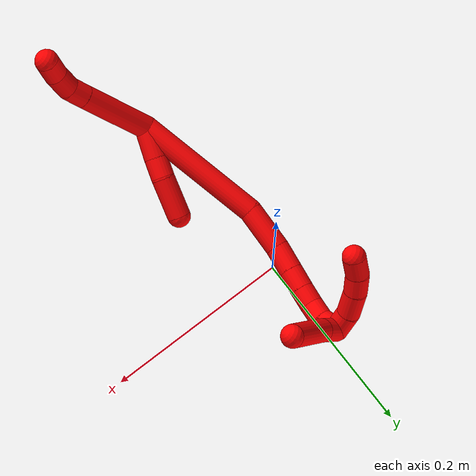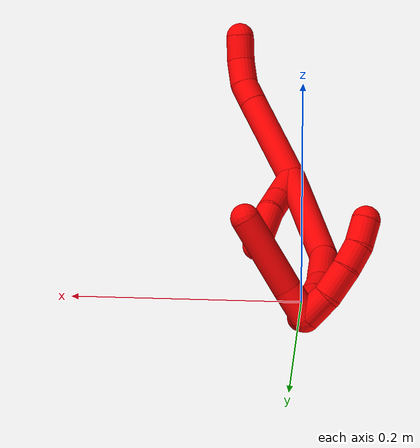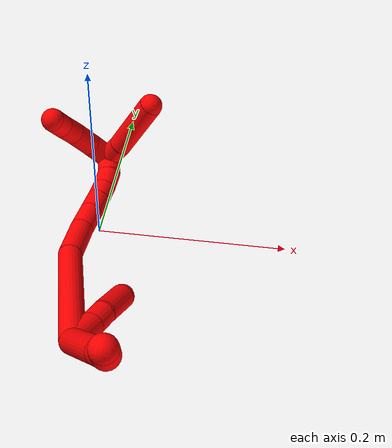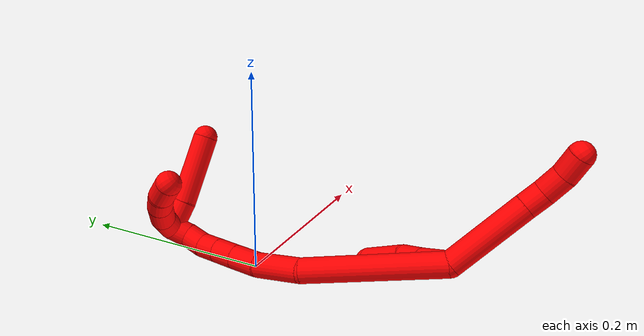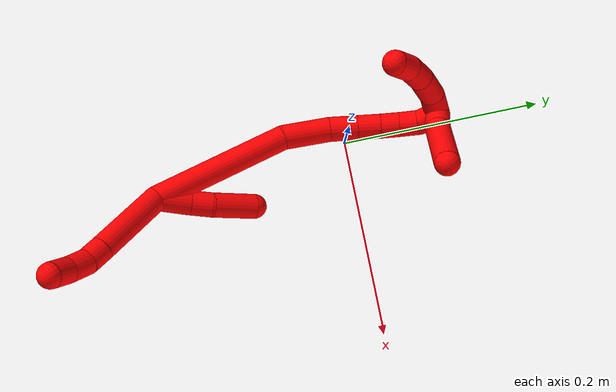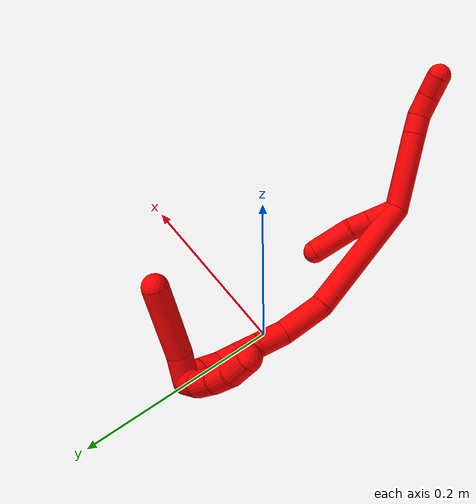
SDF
<sdf version="1.7">
 <world name="default">
  <model name="2">
   <static>0</static>
   <link name="2">
    <collision name="collision-cylinder-e_1_2_8">
     <pose>0.001949 0.00457 0.041323 -0.110154 0.046841 -0.002583</pose>
     <geometry><cylinder><radius>0.0125</radius><length>0.083242</length></cylinder></geometry>
     <surface>
      <friction><ode><mu>1.16</mu><mu2>1.16</mu2><slip1>0</slip1><slip2>0</slip2></ode></friction>
      <contact><ode><kp>1e+06</kp><kd>1</kd><max_vel>0</max_vel><min_depth>0.001</min_depth></ode></contact>
     </surface>
    </collision>
    <visual name="visual-cylinder-e_1_2_8">
     <pose>0.001949 0.00457 0.041323 -0.110154 0.046841 -0.002583</pose>
     <geometry><cylinder><radius>0.0125</radius><length>0.083242</length></cylinder></geometry>
     <material><ambient>1 0 0 1</ambient></material>
    </visual>
    <collision name="collision-cylinder-e_2_8_9">
     <pose>0.004342 0.010022 0.092764 -0.086893 0.043717 -0.001901</pose>
     <geometry><cylinder><radius>0.0125</radius><length>0.020331</length></cylinder></geometry>
     <surface>
      <friction><ode><mu>1.16</mu><mu2>1.16</mu2><slip1>0</slip1><slip2>0</slip2></ode></friction>
      <contact><ode><kp>1e+06</kp><kd>1</kd><max_vel>0</max_vel><min_depth>0.001</min_depth></ode></contact>
     </surface>
    </collision>
    <visual name="visual-cylinder-e_2_8_9">
     <pose>0.004342 0.010022 0.092764 -0.086893 0.043717 -0.001901</pose>
     <geometry><cylinder><radius>0.0125</radius><length>0.020331</length></cylinder></geometry>
     <material><ambient>1 0 0 1</ambient></material>
    </visual>
    <collision name="collision-cylinder-e_3_9_10">
     <pose>0.001828 0.011191 0.114245 -0.025297 -0.254576 0.003238</pose>
     <geometry><cylinder><radius>0.0125</radius><length>0.023492</length></cylinder></geometry>
     <surface>
      <friction><ode><mu>1.16</mu><mu2>1.16</mu2><slip1>0</slip1><slip2>0</slip2></ode></friction>
      <contact><ode><kp>1e+06</kp><kd>1</kd><max_vel>0</max_vel><min_depth>0.001</min_depth></ode></contact>
     </surface>
    </collision>
    <visual name="visual-cylinder-e_3_9_10">
     <pose>0.001828 0.011191 0.114245 -0.025297 -0.254576 0.003238</pose>
     <geometry><cylinder><radius>0.0125</radius><length>0.023492</length></cylinder></geometry>
     <material><ambient>1 0 0 1</ambient></material>
    </visual>
    <collision name="collision-cylinder-e_4_10_6">
     <pose>-0.006117 0.012901 0.135836 -0.138166 -0.449935 0.031666</pose>
     <geometry><cylinder><radius>0.0125</radius><length>0.022936</length></cylinder></geometry>
     <surface>
      <friction><ode><mu>1.16</mu><mu2>1.16</mu2><slip1>0</slip1><slip2>0</slip2></ode></friction>
      <contact><ode><kp>1e+06</kp><kd>1</kd><max_vel>0</max_vel><min_depth>0.001</min_depth></ode></contact>
     </surface>
    </collision>
    <visual name="visual-cylinder-e_4_10_6">
     <pose>-0.006117 0.012901 0.135836 -0.138166 -0.449935 0.031666</pose>
     <geometry><cylinder><radius>0.0125</radius><length>0.022936</length></cylinder></geometry>
     <material><ambient>1 0 0 1</ambient></material>
    </visual>
    <collision name="collision-cylinder-e_1_2_11">
     <pose>0.00501 0.011259 -0.011578 -2.3702 0.300787 -0.714406</pose>
     <geometry><cylinder><radius>0.0125</radius><length>0.033818</length></cylinder></geometry>
     <surface>
      <friction><ode><mu>1.16</mu><mu2>1.16</mu2><slip1>0</slip1><slip2>0</slip2></ode></friction>
      <contact><ode><kp>1e+06</kp><kd>1</kd><max_vel>0</max_vel><min_depth>0.001</min_depth></ode></contact>
     </surface>
    </collision>
    <visual name="visual-cylinder-e_1_2_11">
     <pose>0.00501 0.011259 -0.011578 -2.3702 0.300787 -0.714406</pose>
     <geometry><cylinder><radius>0.0125</radius><length>0.033818</length></cylinder></geometry>
     <material><ambient>1 0 0 1</ambient></material>
    </visual>
    <collision name="collision-cylinder-e_2_11_12">
     <pose>0.012509 0.030159 -0.030485 -2.3352 0.230915 -0.530921</pose>
     <geometry><cylinder><radius>0.0125</radius><length>0.021753</length></cylinder></geometry>
     <surface>
      <friction><ode><mu>1.16</mu><mu2>1.16</mu2><slip1>0</slip1><slip2>0</slip2></ode></friction>
      <contact><ode><kp>1e+06</kp><kd>1</kd><max_vel>0</max_vel><min_depth>0.001</min_depth></ode></contact>
     </surface>
    </collision>
    <visual name="visual-cylinder-e_2_11_12">
     <pose>0.012509 0.030159 -0.030485 -2.3352 0.230915 -0.530921</pose>
     <geometry><cylinder><radius>0.0125</radius><length>0.021753</length></cylinder></geometry>
     <material><ambient>1 0 0 1</ambient></material>
    </visual>
    <collision name="collision-cylinder-e_3_12_5">
     <pose>0.021458 0.049799 -0.055357 -2.54183 0.295058 -0.896032</pose>
     <geometry><cylinder><radius>0.0125</radius><length>0.044429</length></cylinder></geometry>
     <surface>
      <friction><ode><mu>1.16</mu><mu2>1.16</mu2><slip1>0</slip1><slip2>0</slip2></ode></friction>
      <contact><ode><kp>1e+06</kp><kd>1</kd><max_vel>0</max_vel><min_depth>0.001</min_depth></ode></contact>
     </surface>
    </collision>
    <visual name="visual-cylinder-e_3_12_5">
     <pose>0.021458 0.049799 -0.055357 -2.54183 0.295058 -0.896032</pose>
     <geometry><cylinder><radius>0.0125</radius><length>0.044429</length></cylinder></geometry>
     <material><ambient>1 0 0 1</ambient></material>
    </visual>
    <collision name="collision-cylinder-e_1_2_13">
     <pose>-0.015193 0.031755 -0.060604 -2.65895 -0.218506 0.838512</pose>
     <geometry><cylinder><radius>0.0125</radius><length>0.140172</length></cylinder></geometry>
     <surface>
      <friction><ode><mu>1.16</mu><mu2>1.16</mu2><slip1>0</slip1><slip2>0</slip2></ode></friction>
      <contact><ode><kp>1e+06</kp><kd>1</kd><max_vel>0</max_vel><min_depth>0.001</min_depth></ode></contact>
     </surface>
    </collision>
    <visual name="visual-cylinder-e_1_2_13">
     <pose>-0.015193 0.031755 -0.060604 -2.65895 -0.218506 0.838512</pose>
     <geometry><cylinder><radius>0.0125</radius><length>0.140172</length></cylinder></geometry>
     <material><ambient>1 0 0 1</ambient></material>
    </visual>
    <collision name="collision-cylinder-e_2_13_14">
     <pose>-0.031238 0.078821 -0.139664 -2.44904 -0.035546 0.098447</pose>
     <geometry><cylinder><radius>0.0125</radius><length>0.047991</length></cylinder></geometry>
     <surface>
      <friction><ode><mu>1.16</mu><mu2>1.16</mu2><slip1>0</slip1><slip2>0</slip2></ode></friction>
      <contact><ode><kp>1e+06</kp><kd>1</kd><max_vel>0</max_vel><min_depth>0.001</min_depth></ode></contact>
     </surface>
    </collision>
    <visual name="visual-cylinder-e_2_13_14">
     <pose>-0.031238 0.078821 -0.139664 -2.44904 -0.035546 0.098447</pose>
     <geometry><cylinder><radius>0.0125</radius><length>0.047991</length></cylinder></geometry>
     <material><ambient>1 0 0 1</ambient></material>
    </visual>
    <collision name="collision-cylinder-e_3_14_15">
     <pose>-0.032435 0.105017 -0.16737 -2.27524 -0.024056 0.052007</pose>
     <geometry><cylinder><radius>0.0125</radius><length>0.028576</length></cylinder></geometry>
     <surface>
      <friction><ode><mu>1.16</mu><mu2>1.16</mu2><slip1>0</slip1><slip2>0</slip2></ode></friction>
      <contact><ode><kp>1e+06</kp><kd>1</kd><max_vel>0</max_vel><min_depth>0.001</min_depth></ode></contact>
     </surface>
    </collision>
    <visual name="visual-cylinder-e_3_14_15">
     <pose>-0.032435 0.105017 -0.16737 -2.27524 -0.024056 0.052007</pose>
     <geometry><cylinder><radius>0.0125</radius><length>0.028576</length></cylinder></geometry>
     <material><ambient>1 0 0 1</ambient></material>
    </visual>
    <collision name="collision-cylinder-e_4_15_16">
     <pose>-0.033109 0.124748 -0.183994 -2.26562 -0.028708 0.061285</pose>
     <geometry><cylinder><radius>0.0125</radius><length>0.023042</length></cylinder></geometry>
     <surface>
      <friction><ode><mu>1.16</mu><mu2>1.16</mu2><slip1>0</slip1><slip2>0</slip2></ode></friction>
      <contact><ode><kp>1e+06</kp><kd>1</kd><max_vel>0</max_vel><min_depth>0.001</min_depth></ode></contact>
     </surface>
    </collision>
    <visual name="visual-cylinder-e_4_15_16">
     <pose>-0.033109 0.124748 -0.183994 -2.26562 -0.028708 0.061285</pose>
     <geometry><cylinder><radius>0.0125</radius><length>0.023042</length></cylinder></geometry>
     <material><ambient>1 0 0 1</ambient></material>
    </visual>
    <collision name="collision-cylinder-e_5_16_17">
     <pose>-0.03397 0.141262 -0.197846 -2.27236 -0.052809 0.113662</pose>
     <geometry><cylinder><radius>0.0125</radius><length>0.020105</length></cylinder></geometry>
     <surface>
      <friction><ode><mu>1.16</mu><mu2>1.16</mu2><slip1>0</slip1><slip2>0</slip2></ode></friction>
      <contact><ode><kp>1e+06</kp><kd>1</kd><max_vel>0</max_vel><min_depth>0.001</min_depth></ode></contact>
     </surface>
    </collision>
    <visual name="visual-cylinder-e_5_16_17">
     <pose>-0.03397 0.141262 -0.197846 -2.27236 -0.052809 0.113662</pose>
     <geometry><cylinder><radius>0.0125</radius><length>0.020105</length></cylinder></geometry>
     <material><ambient>1 0 0 1</ambient></material>
    </visual>
    <collision name="collision-cylinder-e_6_17_18">
     <pose>-0.036681 0.157593 -0.208926 -2.05899 -0.218646 0.36116</pose>
     <geometry><cylinder><radius>0.0125</radius><length>0.020098</length></cylinder></geometry>
     <surface>
      <friction><ode><mu>1.16</mu><mu2>1.16</mu2><slip1>0</slip1><slip2>0</slip2></ode></friction>
      <contact><ode><kp>1e+06</kp><kd>1</kd><max_vel>0</max_vel><min_depth>0.001</min_depth></ode></contact>
     </surface>
    </collision>
    <visual name="visual-cylinder-e_6_17_18">
     <pose>-0.036681 0.157593 -0.208926 -2.05899 -0.218646 0.36116</pose>
     <geometry><cylinder><radius>0.0125</radius><length>0.020098</length></cylinder></geometry>
     <material><ambient>1 0 0 1</ambient></material>
    </visual>
    <collision name="collision-cylinder-e_7_18_1">
     <pose>-0.043947 0.173253 -0.218562 -2.19466 -0.533146 0.979388</pose>
     <geometry><cylinder><radius>0.0125</radius><length>0.020015</length></cylinder></geometry>
     <surface>
      <friction><ode><mu>1.16</mu><mu2>1.16</mu2><slip1>0</slip1><slip2>0</slip2></ode></friction>
      <contact><ode><kp>1e+06</kp><kd>1</kd><max_vel>0</max_vel><min_depth>0.001</min_depth></ode></contact>
     </surface>
    </collision>
    <visual name="visual-cylinder-e_7_18_1">
     <pose>-0.043947 0.173253 -0.218562 -2.19466 -0.533146 0.979388</pose>
     <geometry><cylinder><radius>0.0125</radius><length>0.020015</length></cylinder></geometry>
     <material><ambient>1 0 0 1</ambient></material>
    </visual>
    <collision name="collision-cylinder-e_1_1_19">
     <pose>-0.049983 0.188323 -0.211427 -0.585823 -0.064975 0.019602</pose>
     <geometry><cylinder><radius>0.0125</radius><length>0.029273</length></cylinder></geometry>
     <surface>
      <friction><ode><mu>1.16</mu><mu2>1.16</mu2><slip1>0</slip1><slip2>0</slip2></ode></friction>
      <contact><ode><kp>1e+06</kp><kd>1</kd><max_vel>0</max_vel><min_depth>0.001</min_depth></ode></contact>
     </surface>
    </collision>
    <visual name="visual-cylinder-e_1_1_19">
     <pose>-0.049983 0.188323 -0.211427 -0.585823 -0.064975 0.019602</pose>
     <geometry><cylinder><radius>0.0125</radius><length>0.029273</length></cylinder></geometry>
     <material><ambient>1 0 0 1</ambient></material>
    </visual>
    <collision name="collision-cylinder-e_2_19_4">
     <pose>-0.055467 0.218613 -0.172117 -0.685941 -0.128537 0.045953</pose>
     <geometry><cylinder><radius>0.0125</radius><length>0.070727</length></cylinder></geometry>
     <surface>
      <friction><ode><mu>1.16</mu><mu2>1.16</mu2><slip1>0</slip1><slip2>0</slip2></ode></friction>
      <contact><ode><kp>1e+06</kp><kd>1</kd><max_vel>0</max_vel><min_depth>0.001</min_depth></ode></contact>
     </surface>
    </collision>
    <visual name="visual-cylinder-e_2_19_4">
     <pose>-0.055467 0.218613 -0.172117 -0.685941 -0.128537 0.045953</pose>
     <geometry><cylinder><radius>0.0125</radius><length>0.070727</length></cylinder></geometry>
     <material><ambient>1 0 0 1</ambient></material>
    </visual>
    <collision name="collision-cylinder-e_1_1_20">
     <pose>-0.061473 0.178854 -0.219821 0.353494 -1.2579 -0.258433</pose>
     <geometry><cylinder><radius>0.0125</radius><length>0.02615</length></cylinder></geometry>
     <surface>
      <friction><ode><mu>1.16</mu><mu2>1.16</mu2><slip1>0</slip1><slip2>0</slip2></ode></friction>
      <contact><ode><kp>1e+06</kp><kd>1</kd><max_vel>0</max_vel><min_depth>0.001</min_depth></ode></contact>
     </surface>
    </collision>
    <visual name="visual-cylinder-e_1_1_20">
     <pose>-0.061473 0.178854 -0.219821 0.353494 -1.2579 -0.258433</pose>
     <geometry><cylinder><radius>0.0125</radius><length>0.02615</length></cylinder></geometry>
     <material><ambient>1 0 0 1</ambient></material>
    </visual>
    <collision name="collision-cylinder-e_2_20_21">
     <pose>-0.085975 0.17526 -0.208776 0.294059 -1.00884 -0.163154</pose>
     <geometry><cylinder><radius>0.0125</radius><length>0.028509</length></cylinder></geometry>
     <surface>
      <friction><ode><mu>1.16</mu><mu2>1.16</mu2><slip1>0</slip1><slip2>0</slip2></ode></friction>
      <contact><ode><kp>1e+06</kp><kd>1</kd><max_vel>0</max_vel><min_depth>0.001</min_depth></ode></contact>
     </surface>
    </collision>
    <visual name="visual-cylinder-e_2_20_21">
     <pose>-0.085975 0.17526 -0.208776 0.294059 -1.00884 -0.163154</pose>
     <geometry><cylinder><radius>0.0125</radius><length>0.028509</length></cylinder></geometry>
     <material><ambient>1 0 0 1</ambient></material>
    </visual>
    <collision name="collision-cylinder-e_3_21_22">
     <pose>-0.106357 0.170774 -0.194522 0.316107 -0.847264 -0.143496</pose>
     <geometry><cylinder><radius>0.0125</radius><length>0.0222</length></cylinder></geometry>
     <surface>
      <friction><ode><mu>1.16</mu><mu2>1.16</mu2><slip1>0</slip1><slip2>0</slip2></ode></friction>
      <contact><ode><kp>1e+06</kp><kd>1</kd><max_vel>0</max_vel><min_depth>0.001</min_depth></ode></contact>
     </surface>
    </collision>
    <visual name="visual-cylinder-e_3_21_22">
     <pose>-0.106357 0.170774 -0.194522 0.316107 -0.847264 -0.143496</pose>
     <geometry><cylinder><radius>0.0125</radius><length>0.0222</length></cylinder></geometry>
     <material><ambient>1 0 0 1</ambient></material>
    </visual>
    <collision name="collision-cylinder-e_4_22_3">
     <pose>-0.121273 0.166497 -0.178244 0.211134 -0.60677 -0.066317</pose>
     <geometry><cylinder><radius>0.0125</radius><length>0.023142</length></cylinder></geometry>
     <surface>
      <friction><ode><mu>1.16</mu><mu2>1.16</mu2><slip1>0</slip1><slip2>0</slip2></ode></friction>
      <contact><ode><kp>1e+06</kp><kd>1</kd><max_vel>0</max_vel><min_depth>0.001</min_depth></ode></contact>
     </surface>
    </collision>
    <visual name="visual-cylinder-e_4_22_3">
     <pose>-0.121273 0.166497 -0.178244 0.211134 -0.60677 -0.066317</pose>
     <geometry><cylinder><radius>0.0125</radius><length>0.023142</length></cylinder></geometry>
     <material><ambient>1 0 0 1</ambient></material>
    </visual>
    <collision name="collision-sphere-3">
     <pose>-0.127871 0.164505 -0.168949 0 -0 0</pose>
     <geometry><sphere><radius>0.0125</radius></sphere></geometry>
     <surface>
      <friction><ode><mu>1.16</mu><mu2>1.16</mu2><slip1>0</slip1><slip2>0</slip2></ode></friction>
      <contact><ode><kp>1e+06</kp><kd>1</kd><max_vel>0</max_vel><min_depth>0.001</min_depth></ode></contact>
     </surface>
    </collision>
    <visual name="visual-sphere-3">
     <pose>-0.127871 0.164505 -0.168949 0 -0 0</pose>
     <geometry><sphere><radius>0.0125</radius></sphere></geometry>
     <material><ambient>1 0 0 1</ambient></material>
    </visual>
    <collision name="collision-sphere-22">
     <pose>-0.114676 0.16849 -0.187538 0 -0 0</pose>
     <geometry><sphere><radius>0.0125</radius></sphere></geometry>
     <surface>
      <friction><ode><mu>1.16</mu><mu2>1.16</mu2><slip1>0</slip1><slip2>0</slip2></ode></friction>
      <contact><ode><kp>1e+06</kp><kd>1</kd><max_vel>0</max_vel><min_depth>0.001</min_depth></ode></contact>
     </surface>
    </collision>
    <visual name="visual-sphere-22">
     <pose>-0.114676 0.16849 -0.187538 0 -0 0</pose>
     <geometry><sphere><radius>0.0125</radius></sphere></geometry>
     <material><ambient>1 0 0 1</ambient></material>
    </visual>
    <collision name="collision-sphere-21">
     <pose>-0.098037 0.173058 -0.201507 0 -0 0</pose>
     <geometry><sphere><radius>0.0125</radius></sphere></geometry>
     <surface>
      <friction><ode><mu>1.16</mu><mu2>1.16</mu2><slip1>0</slip1><slip2>0</slip2></ode></friction>
      <contact><ode><kp>1e+06</kp><kd>1</kd><max_vel>0</max_vel><min_depth>0.001</min_depth></ode></contact>
     </surface>
    </collision>
    <visual name="visual-sphere-21">
     <pose>-0.098037 0.173058 -0.201507 0 -0 0</pose>
     <geometry><sphere><radius>0.0125</radius></sphere></geometry>
     <material><ambient>1 0 0 1</ambient></material>
    </visual>
    <collision name="collision-sphere-20">
     <pose>-0.073913 0.177461 -0.216045 0 -0 0</pose>
     <geometry><sphere><radius>0.0125</radius></sphere></geometry>
     <surface>
      <friction><ode><mu>1.16</mu><mu2>1.16</mu2><slip1>0</slip1><slip2>0</slip2></ode></friction>
      <contact><ode><kp>1e+06</kp><kd>1</kd><max_vel>0</max_vel><min_depth>0.001</min_depth></ode></contact>
     </surface>
    </collision>
    <visual name="visual-sphere-20">
     <pose>-0.073913 0.177461 -0.216045 0 -0 0</pose>
     <geometry><sphere><radius>0.0125</radius></sphere></geometry>
     <material><ambient>1 0 0 1</ambient></material>
    </visual>
    <collision name="collision-sphere-4">
     <pose>-0.06 0.240827 -0.144978 0 -0 0</pose>
     <geometry><sphere><radius>0.0125</radius></sphere></geometry>
     <surface>
      <friction><ode><mu>1.16</mu><mu2>1.16</mu2><slip1>0</slip1><slip2>0</slip2></ode></friction>
      <contact><ode><kp>1e+06</kp><kd>1</kd><max_vel>0</max_vel><min_depth>0.001</min_depth></ode></contact>
     </surface>
    </collision>
    <visual name="visual-sphere-4">
     <pose>-0.06 0.240827 -0.144978 0 -0 0</pose>
     <geometry><sphere><radius>0.0125</radius></sphere></geometry>
     <material><ambient>1 0 0 1</ambient></material>
    </visual>
    <collision name="collision-sphere-11">
     <pose>0.010019 0.022517 -0.023157 0 -0 0</pose>
     <geometry><sphere><radius>0.0125</radius></sphere></geometry>
     <surface>
      <friction><ode><mu>1.16</mu><mu2>1.16</mu2><slip1>0</slip1><slip2>0</slip2></ode></friction>
      <contact><ode><kp>1e+06</kp><kd>1</kd><max_vel>0</max_vel><min_depth>0.001</min_depth></ode></contact>
     </surface>
    </collision>
    <visual name="visual-sphere-11">
     <pose>0.010019 0.022517 -0.023157 0 -0 0</pose>
     <geometry><sphere><radius>0.0125</radius></sphere></geometry>
     <material><ambient>1 0 0 1</ambient></material>
    </visual>
    <collision name="collision-sphere-6">
     <pose>-0.011105 0.014323 0.146065 0 -0 0</pose>
     <geometry><sphere><radius>0.0125</radius></sphere></geometry>
     <surface>
      <friction><ode><mu>1.16</mu><mu2>1.16</mu2><slip1>0</slip1><slip2>0</slip2></ode></friction>
      <contact><ode><kp>1e+06</kp><kd>1</kd><max_vel>0</max_vel><min_depth>0.001</min_depth></ode></contact>
     </surface>
    </collision>
    <visual name="visual-sphere-6">
     <pose>-0.011105 0.014323 0.146065 0 -0 0</pose>
     <geometry><sphere><radius>0.0125</radius></sphere></geometry>
     <material><ambient>1 0 0 1</ambient></material>
    </visual>
    <collision name="collision-sphere-10">
     <pose>-0.00113 0.011479 0.125608 0 -0 0</pose>
     <geometry><sphere><radius>0.0125</radius></sphere></geometry>
     <surface>
      <friction><ode><mu>1.16</mu><mu2>1.16</mu2><slip1>0</slip1><slip2>0</slip2></ode></friction>
      <contact><ode><kp>1e+06</kp><kd>1</kd><max_vel>0</max_vel><min_depth>0.001</min_depth></ode></contact>
     </surface>
    </collision>
    <visual name="visual-sphere-10">
     <pose>-0.00113 0.011479 0.125608 0 -0 0</pose>
     <geometry><sphere><radius>0.0125</radius></sphere></geometry>
     <material><ambient>1 0 0 1</ambient></material>
    </visual>
    <collision name="collision-sphere-9">
     <pose>0.004786 0.010904 0.102881 0 -0 0</pose>
     <geometry><sphere><radius>0.0125</radius></sphere></geometry>
     <surface>
      <friction><ode><mu>1.16</mu><mu2>1.16</mu2><slip1>0</slip1><slip2>0</slip2></ode></friction>
      <contact><ode><kp>1e+06</kp><kd>1</kd><max_vel>0</max_vel><min_depth>0.001</min_depth></ode></contact>
     </surface>
    </collision>
    <visual name="visual-sphere-9">
     <pose>0.004786 0.010904 0.102881 0 -0 0</pose>
     <geometry><sphere><radius>0.0125</radius></sphere></geometry>
     <material><ambient>1 0 0 1</ambient></material>
    </visual>
    <collision name="collision-sphere-2">
     <geometry><sphere><radius>0.0125</radius></sphere></geometry>
     <surface>
      <friction><ode><mu>1.16</mu><mu2>1.16</mu2><slip1>0</slip1><slip2>0</slip2></ode></friction>
      <contact><ode><kp>1e+06</kp><kd>1</kd><max_vel>0</max_vel><min_depth>0.001</min_depth></ode></contact>
     </surface>
    </collision>
    <visual name="visual-sphere-2">
     <geometry><sphere><radius>0.0125</radius></sphere></geometry>
     <material><ambient>1 0 0 1</ambient></material>
    </visual>
    <collision name="collision-sphere-19">
     <pose>-0.050934 0.196398 -0.199257 0 -0 0</pose>
     <geometry><sphere><radius>0.0125</radius></sphere></geometry>
     <surface>
      <friction><ode><mu>1.16</mu><mu2>1.16</mu2><slip1>0</slip1><slip2>0</slip2></ode></friction>
      <contact><ode><kp>1e+06</kp><kd>1</kd><max_vel>0</max_vel><min_depth>0.001</min_depth></ode></contact>
     </surface>
    </collision>
    <visual name="visual-sphere-19">
     <pose>-0.050934 0.196398 -0.199257 0 -0 0</pose>
     <geometry><sphere><radius>0.0125</radius></sphere></geometry>
     <material><ambient>1 0 0 1</ambient></material>
    </visual>
    <collision name="collision-sphere-8">
     <pose>0.003898 0.009141 0.082647 0 -0 0</pose>
     <geometry><sphere><radius>0.0125</radius></sphere></geometry>
     <surface>
      <friction><ode><mu>1.16</mu><mu2>1.16</mu2><slip1>0</slip1><slip2>0</slip2></ode></friction>
      <contact><ode><kp>1e+06</kp><kd>1</kd><max_vel>0</max_vel><min_depth>0.001</min_depth></ode></contact>
     </surface>
    </collision>
    <visual name="visual-sphere-8">
     <pose>0.003898 0.009141 0.082647 0 -0 0</pose>
     <geometry><sphere><radius>0.0125</radius></sphere></geometry>
     <material><ambient>1 0 0 1</ambient></material>
    </visual>
    <collision name="collision-sphere-12">
     <pose>0.014998 0.037802 -0.037812 0 -0 0</pose>
     <geometry><sphere><radius>0.0125</radius></sphere></geometry>
     <surface>
      <friction><ode><mu>1.16</mu><mu2>1.16</mu2><slip1>0</slip1><slip2>0</slip2></ode></friction>
      <contact><ode><kp>1e+06</kp><kd>1</kd><max_vel>0</max_vel><min_depth>0.001</min_depth></ode></contact>
     </surface>
    </collision>
    <visual name="visual-sphere-12">
     <pose>0.014998 0.037802 -0.037812 0 -0 0</pose>
     <geometry><sphere><radius>0.0125</radius></sphere></geometry>
     <material><ambient>1 0 0 1</ambient></material>
    </visual>
    <collision name="collision-sphere-5">
     <pose>0.027918 0.061796 -0.072903 0 -0 0</pose>
     <geometry><sphere><radius>0.0125</radius></sphere></geometry>
     <surface>
      <friction><ode><mu>1.16</mu><mu2>1.16</mu2><slip1>0</slip1><slip2>0</slip2></ode></friction>
      <contact><ode><kp>1e+06</kp><kd>1</kd><max_vel>0</max_vel><min_depth>0.001</min_depth></ode></contact>
     </surface>
    </collision>
    <visual name="visual-sphere-5">
     <pose>0.027918 0.061796 -0.072903 0 -0 0</pose>
     <geometry><sphere><radius>0.0125</radius></sphere></geometry>
     <material><ambient>1 0 0 1</ambient></material>
    </visual>
    <collision name="collision-sphere-13">
     <pose>-0.030385 0.06351 -0.121208 0 -0 0</pose>
     <geometry><sphere><radius>0.0125</radius></sphere></geometry>
     <surface>
      <friction><ode><mu>1.16</mu><mu2>1.16</mu2><slip1>0</slip1><slip2>0</slip2></ode></friction>
      <contact><ode><kp>1e+06</kp><kd>1</kd><max_vel>0</max_vel><min_depth>0.001</min_depth></ode></contact>
     </surface>
    </collision>
    <visual name="visual-sphere-13">
     <pose>-0.030385 0.06351 -0.121208 0 -0 0</pose>
     <geometry><sphere><radius>0.0125</radius></sphere></geometry>
     <material><ambient>1 0 0 1</ambient></material>
    </visual>
    <collision name="collision-sphere-14">
     <pose>-0.032091 0.094133 -0.158119 0 -0 0</pose>
     <geometry><sphere><radius>0.0125</radius></sphere></geometry>
     <surface>
      <friction><ode><mu>1.16</mu><mu2>1.16</mu2><slip1>0</slip1><slip2>0</slip2></ode></friction>
      <contact><ode><kp>1e+06</kp><kd>1</kd><max_vel>0</max_vel><min_depth>0.001</min_depth></ode></contact>
     </surface>
    </collision>
    <visual name="visual-sphere-14">
     <pose>-0.032091 0.094133 -0.158119 0 -0 0</pose>
     <geometry><sphere><radius>0.0125</radius></sphere></geometry>
     <material><ambient>1 0 0 1</ambient></material>
    </visual>
    <collision name="collision-sphere-15">
     <pose>-0.032778 0.115901 -0.17662 0 -0 0</pose>
     <geometry><sphere><radius>0.0125</radius></sphere></geometry>
     <surface>
      <friction><ode><mu>1.16</mu><mu2>1.16</mu2><slip1>0</slip1><slip2>0</slip2></ode></friction>
      <contact><ode><kp>1e+06</kp><kd>1</kd><max_vel>0</max_vel><min_depth>0.001</min_depth></ode></contact>
     </surface>
    </collision>
    <visual name="visual-sphere-15">
     <pose>-0.032778 0.115901 -0.17662 0 -0 0</pose>
     <geometry><sphere><radius>0.0125</radius></sphere></geometry>
     <material><ambient>1 0 0 1</ambient></material>
    </visual>
    <collision name="collision-sphere-16">
     <pose>-0.03344 0.133594 -0.191367 0 -0 0</pose>
     <geometry><sphere><radius>0.0125</radius></sphere></geometry>
     <surface>
      <friction><ode><mu>1.16</mu><mu2>1.16</mu2><slip1>0</slip1><slip2>0</slip2></ode></friction>
      <contact><ode><kp>1e+06</kp><kd>1</kd><max_vel>0</max_vel><min_depth>0.001</min_depth></ode></contact>
     </surface>
    </collision>
    <visual name="visual-sphere-16">
     <pose>-0.03344 0.133594 -0.191367 0 -0 0</pose>
     <geometry><sphere><radius>0.0125</radius></sphere></geometry>
     <material><ambient>1 0 0 1</ambient></material>
    </visual>
    <collision name="collision-sphere-17">
     <pose>-0.034501 0.14893 -0.204325 0 -0 0</pose>
     <geometry><sphere><radius>0.0125</radius></sphere></geometry>
     <surface>
      <friction><ode><mu>1.16</mu><mu2>1.16</mu2><slip1>0</slip1><slip2>0</slip2></ode></friction>
      <contact><ode><kp>1e+06</kp><kd>1</kd><max_vel>0</max_vel><min_depth>0.001</min_depth></ode></contact>
     </surface>
    </collision>
    <visual name="visual-sphere-17">
     <pose>-0.034501 0.14893 -0.204325 0 -0 0</pose>
     <geometry><sphere><radius>0.0125</radius></sphere></geometry>
     <material><ambient>1 0 0 1</ambient></material>
    </visual>
    <collision name="collision-sphere-18">
     <pose>-0.03886 0.166257 -0.213527 0 -0 0</pose>
     <geometry><sphere><radius>0.0125</radius></sphere></geometry>
     <surface>
      <friction><ode><mu>1.16</mu><mu2>1.16</mu2><slip1>0</slip1><slip2>0</slip2></ode></friction>
      <contact><ode><kp>1e+06</kp><kd>1</kd><max_vel>0</max_vel><min_depth>0.001</min_depth></ode></contact>
     </surface>
    </collision>
    <visual name="visual-sphere-18">
     <pose>-0.03886 0.166257 -0.213527 0 -0 0</pose>
     <geometry><sphere><radius>0.0125</radius></sphere></geometry>
     <material><ambient>1 0 0 1</ambient></material>
    </visual>
    <collision name="collision-sphere-1">
     <pose>-0.049033 0.180248 -0.223597 0 -0 0</pose>
     <geometry><sphere><radius>0.0125</radius></sphere></geometry>
     <surface>
      <friction><ode><mu>1.16</mu><mu2>1.16</mu2><slip1>0</slip1><slip2>0</slip2></ode></friction>
      <contact><ode><kp>1e+06</kp><kd>1</kd><max_vel>0</max_vel><min_depth>0.001</min_depth></ode></contact>
     </surface>
    </collision>
    <visual name="visual-sphere-1">
     <pose>-0.049033 0.180248 -0.223597 0 -0 0</pose>
     <geometry><sphere><radius>0.0125</radius></sphere></geometry>
     <material><ambient>1 0 0 1</ambient></material>
    </visual>
    <inertial>
     <pose>-0.027577 0.088359 -0.090222 0 -0 0</pose>
     <mass>0.75</mass>
     <inertia>
      <ixx>0.000434</ixx>
      <ixy>0</ixy>
      <ixz>0</ixz>
      <iyy>0.00014</iyy>
      <iyz>0</iyz>
      <izz>-9.9e-05</izz>
     </inertia>
    </inertial>
   </link>
   <pose>0.018461 -0.193215 0.043547 0.669678 0.673228 -0.178763</pose>
  </model>
 </world>
</sdf>
